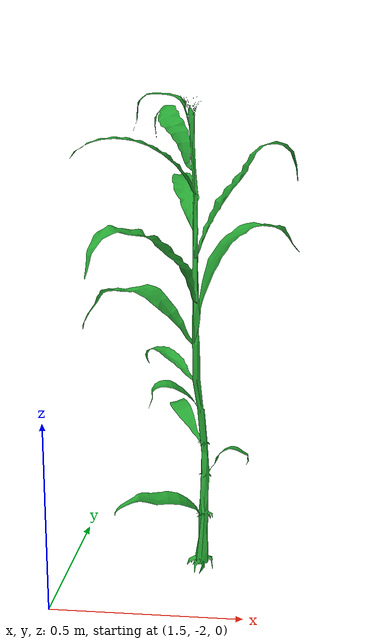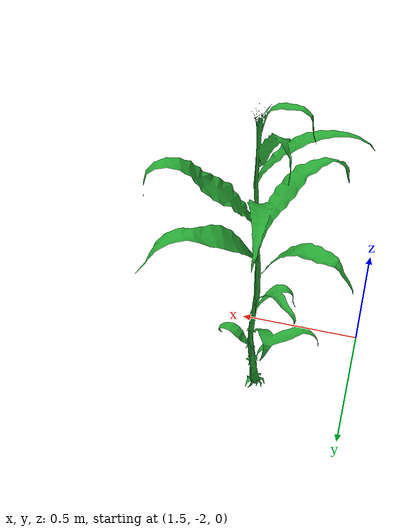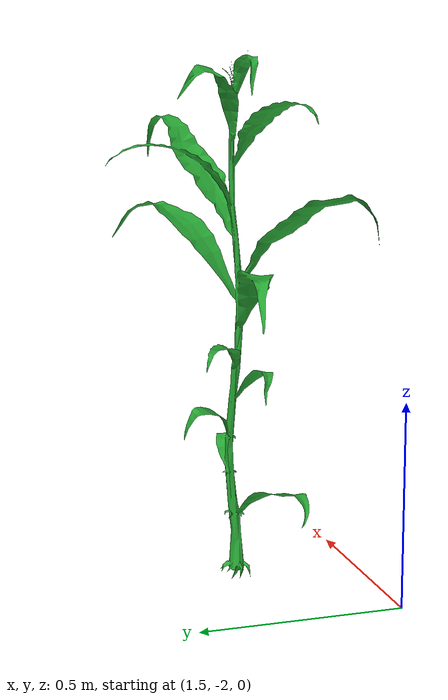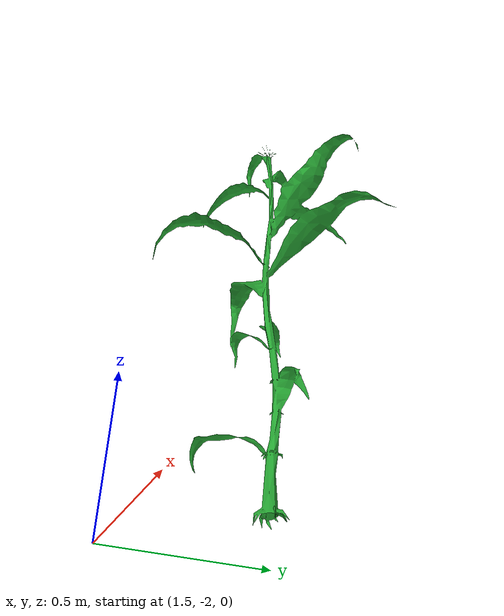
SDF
<?xml version= "1.0" ?>
<sdf version= "1.6">
	<model name= "bush_1">
		<static>true</static>
		<link name= "link" >
			<collision name = "collision">
				<geometry>
					<mesh>
						<uri>model://corn_stalk/meshes/corn_1.obj</uri>
						<scale>0.002 0.002 0.002</scale>
					</mesh>
				</geometry>
				<surface>
					<friction>
						<ode>
							<mu>0</mu>
							<mu2>0</mu2>
						</ode>
					</friction>
					<contact>
      						<collide_without_contact>true</collide_without_contact>
    					</contact>
				</surface>
			</collision>
			<visual name= "visual">
				<geometry>
					<mesh>
						<uri>model://corn_stalk/meshes/corn_1.obj</uri>
						<scale>0.002 0.002 0.002</scale>
					</mesh>
				</geometry>
				<material>
					<script>
						<uri>file://media/materials/scripts/gazebo.material</uri>
						<name>Gazebo/Green </name>
					</script>
				</material>
			</visual>
		</link>
	</model>
</sdf>
